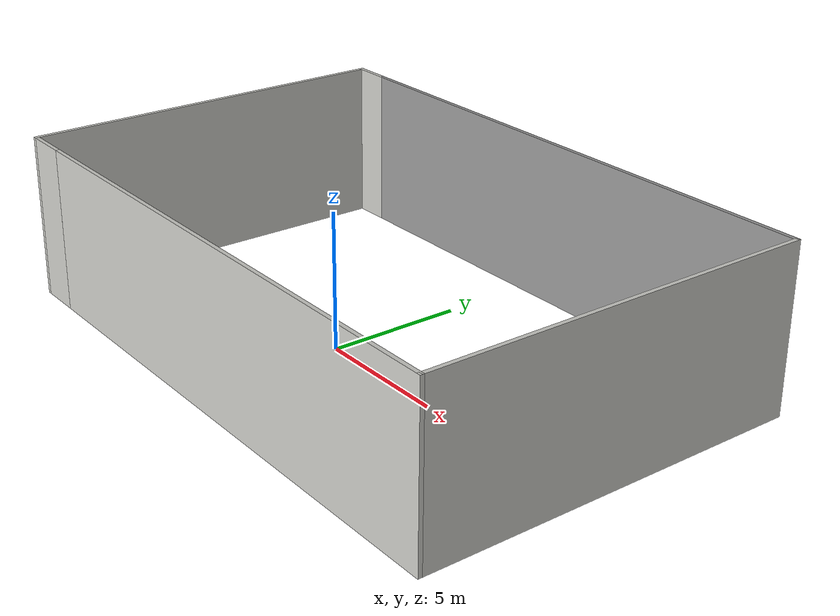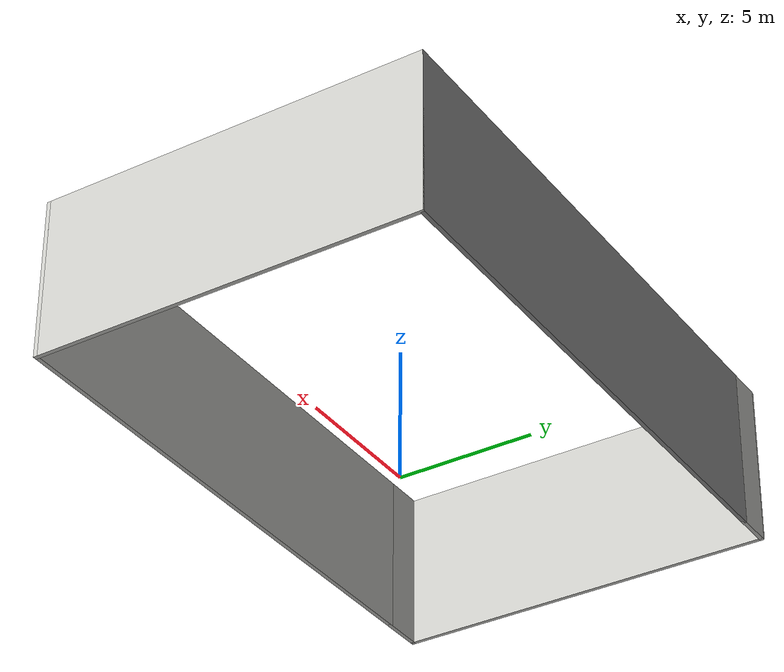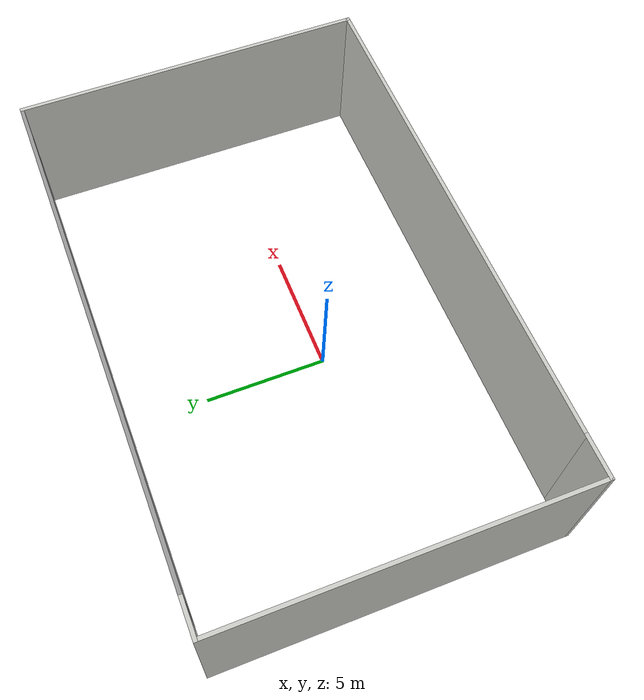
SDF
<?xml version='1.0'?>
<sdf version='1.7'>
  <model name='wh_wall1'>
    <pose>1 1.295 0 0 -0 0</pose>
    <link name='Wall_1'>
      <collision name='Wall_1_Collision'>
        <geometry>
          <box>
            <size>20.75 0.15 6</size>
          </box>
        </geometry>
        <pose>0 0 3 0 -0 0</pose>
      </collision>
      <visual name='Wall_1_Visual'>
        <pose>0 0 3 0 -0 0</pose>
        <geometry>
          <box>
            <size>20.75 0.15 6</size>
          </box>
        </geometry>
        <material>
          <script>
            <uri>file://media/materials/scripts/gazebo.material</uri>
            <name>Gazebo/Grey</name>
          </script>
          <ambient>1 1 1 1</ambient>
        </material>
        <meta>
          <layer>0</layer>
        </meta>
      </visual>
      <pose>0.675 7.05 0 0 -0 0</pose>
    </link>
    <link name='Wall_2'>
      <collision name='Wall_2_Collision'>
        <geometry>
          <box>
            <size>14.25 0.15 6</size>
          </box>
        </geometry>
        <pose>0 0 3 0 -0 0</pose>
      </collision>
      <visual name='Wall_2_Visual'>
        <pose>0 0 3 0 -0 0</pose>
        <geometry>
          <box>
            <size>14.25 0.15 6</size>
          </box>
        </geometry>
        <material>
          <script>
            <uri>file://media/materials/scripts/gazebo.material</uri>
            <name>Gazebo/CeilingTiled</name>
          </script>
          <ambient>1 1 1 1</ambient>
        </material>
        <meta>
          <layer>0</layer>
        </meta>
      </visual>
      <pose>10.975 -0 0 0 -0 -1.5708</pose>
    </link>
    <link name='Wall_3'>
      <collision name='Wall_3_Collision'>
        <geometry>
          <box>
            <size>20.5 0.15 6</size>
          </box>
        </geometry>
        <pose>0 0 3 0 -0 0</pose>
      </collision>
      <visual name='Wall_3_Visual'>
        <pose>0 0 3 0 -0 0</pose>
        <geometry>
          <box>
            <size>20.5 0.15 6</size>
          </box>
        </geometry>
        <material>
          <script>
            <uri>file://media/materials/scripts/gazebo.material</uri>
            <name>Gazebo/CeilingTiled</name>
          </script>
          <ambient>1 1 1 1</ambient>
        </material>
        <meta>
          <layer>0</layer>
        </meta>
      </visual>
      <pose>0.8 -7.05 0 0 -0 3.14159</pose>
    </link>
    <link name='Wall_4'>
      <collision name='Wall_4_Collision'>
        <geometry>
          <box>
            <size>1.75 0.15 6</size>
          </box>
        </geometry>
        <pose>0 0 3 0 -0 0</pose>
      </collision>
      <visual name='Wall_4_Visual'>
        <pose>0 0 3 0 -0 0</pose>
        <geometry>
          <box>
            <size>1.75 0.15 6</size>
          </box>
        </geometry>
        <material>
          <script>
            <uri>file://media/materials/scripts/gazebo.material</uri>
            <name>Gazebo/CeilingTiled</name>
          </script>
          <ambient>1 1 1 1</ambient>
        </material>
        <meta>
          <layer>0</layer>
        </meta>
      </visual>
      <pose>-10.175 -7.05 0 0 -0 3.14159</pose>
    </link>
    <link name='Wall_5'>
      <collision name='Wall_5_Collision'>
        <geometry>
          <box>
            <size>14.25 0.15 6</size>
          </box>
        </geometry>
        <pose>0 0 3 0 -0 0</pose>
      </collision>
      <visual name='Wall_5_Visual'>
        <pose>0 0 3 0 -0 0</pose>
        <geometry>
          <box>
            <size>14.25 0.15 6</size>
          </box>
        </geometry>
        <material>
          <script>
            <uri>file://media/materials/scripts/gazebo.material</uri>
            <name>Gazebo/CeilingTiled</name>
          </script>
          <ambient>1 1 1 1</ambient>
        </material>
        <meta>
          <layer>0</layer>
        </meta>
      </visual>
      <pose>-10.975 -0 0 0 -0 1.5708</pose>
    </link>
    <link name='Wall_8'>
      <collision name='Wall_8_Collision'>
        <geometry>
          <box>
            <size>1.5 0.15 6</size>
          </box>
        </geometry>
        <pose>0 0 3 0 -0 0</pose>
      </collision>
      <visual name='Wall_8_Visual'>
        <pose>0 0 3 0 -0 0</pose>
        <geometry>
          <box>
            <size>1.5 0.15 6</size>
          </box>
        </geometry>
        <material>
          <script>
            <uri>file://media/materials/scripts/gazebo.material</uri>
            <name>Gazebo/CeilingTiled</name>
          </script>
          <ambient>1 1 1 1</ambient>
        </material>
        <meta>
          <layer>0</layer>
        </meta>
      </visual>
      <pose>-10.3 7.05 0 0 -0 3.14159</pose>
    </link>
    <static>1</static>
  </model>
</sdf>
